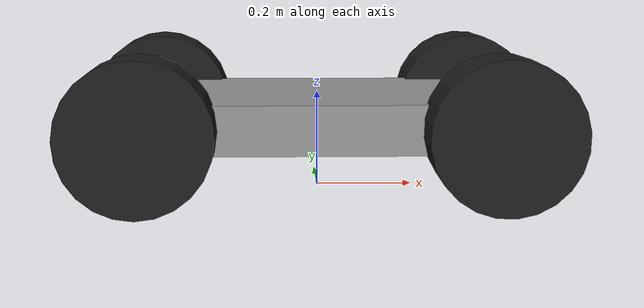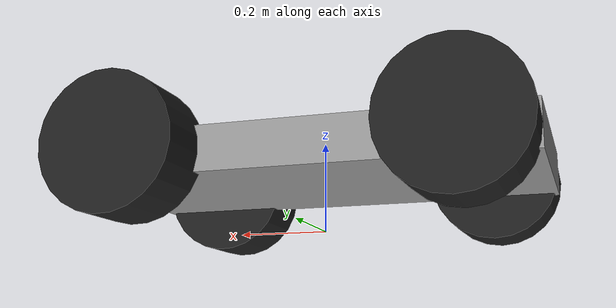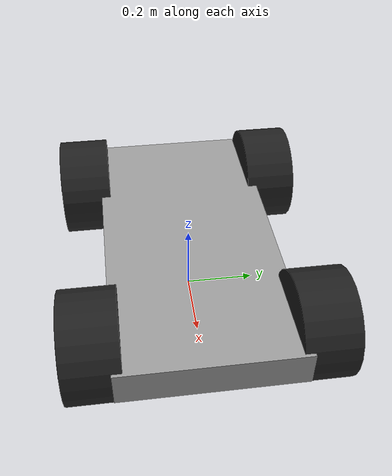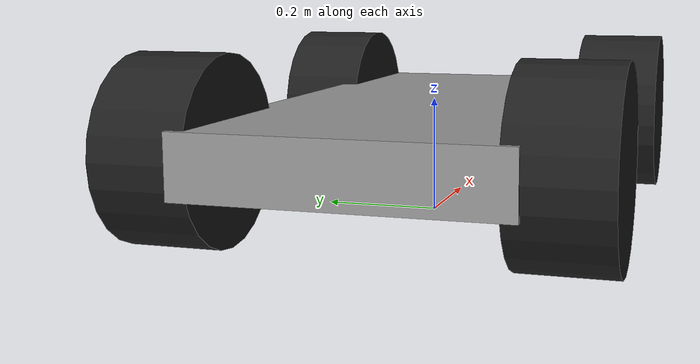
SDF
<?xml version="1.0" ?>

<sdf version="1.5">
  <model name="cart_front_steer">
    <link name="chassis">
      <pose>0 0 0.15 0 0 0</pose>
      <inertial>
        <pose>0.1 0 0 0 0 0</pose>
        <mass>10</mass>
        <inertia>
          <ixx>0.21666666666666667</ixx>
          <iyy>0.8416666666666667</iyy>
          <izz>1.0416666666666667</izz>
          <ixy>0</ixy>
          <ixz>0</ixz>
          <iyz>0</iyz>
        </inertia>
      </inertial>
      <collision name="collision">
        <geometry>
          <box>
            <size>1.0 0.5 0.1</size>
          </box>
        </geometry>
        <surface>
          <contact>
            <ode>
              <soft_cfm>0.0</soft_cfm>
              <soft_erp>0.2</soft_erp>
              <kp>1e+13</kp>
              <kd>1.0</kd>
              <max_vel>0.01</max_vel>
              <min_depth>0.001</min_depth>
            </ode>
          </contact>
        </surface>
      </collision>
      <visual name="visual">
        <geometry>
          <box>
            <size>1.0 0.5 0.1</size>
          </box>
        </geometry>
        <material>
          <script>
            <uri>file://media/materials/scripts/gazebo.material</uri>
            <name>Gazebo/Grey</name>
          </script>
        </material>
      </visual>

      <!-- Collision sensor -->
      <sensor name="contact_sensor_chassis" type="contact">
        <update_rate>50</update_rate>
        <contact>
          <collision>chassis::collision</collision>
        </contact>
        <plugin name="gazebo_ros_contact" filename="libgazebo_ros_contact.so">
          <robotNamespace>/my_robot</robotNamespace>
          <bumperTopicName>bumper_data</bumperTopicName>
        </plugin>
      </sensor>

      <plugin name="imu_plugin" filename="libgazebo_ros_imu.so">
        <robotNamespace>/my_robot</robotNamespace>
        <topicName>imu/data</topicName>
        <updateRate>50.0</updateRate>
        <bodyName>chassis</bodyName>
      </plugin>

      <plugin name="odom_plugin" filename="libgazebo_ros_p3d.so">
        <robotNamespace>/my_robot</robotNamespace>
        <frameName>odom</frameName>
        <bodyName>chassis</bodyName>
        <xyzOffsets>0 0 0</xyzOffsets>
        <rpyOffsets>0 0 0</rpyOffsets>
      </plugin>

      <plugin name="gazebo_ros_control" filename="libgazebo_ros_control.so">
        <robotNamespace>/my_robot</robotNamespace>
      </plugin>

      <!-- Adding LiDAR sensor -->
      <sensor name="velodyne" type="ray">
        <pose>0.5 0 0.9 0 0 0</pose>
        <visualize>false</visualize>
        <update_rate>30</update_rate>
        <ray>
          <scan>
            <horizontal>
              <samples>800</samples>
              <resolution>0.05</resolution>
              <min_angle>-3.141592653589793</min_angle>
              <max_angle>3.141592653589793</max_angle>
            </horizontal>
            <vertical>
              <samples>32</samples> <!-- VLP-16 有 16 个通道 -->
              <resolution>0.5</resolution>
              <min_angle>-0.2617993877991494</min_angle>
              <max_angle>0.2617993877991494</max_angle>
            </vertical>
          </scan>
          <range>
            <min>0.05</min>
            <max>30.0</max>
            <resolution>0.01</resolution>
          </range>
        </ray>
        <plugin name="gazebo_ros_velodyne_laser" filename="libgazebo_ros_velodyne_laser.so">
          <robotNamespace>/my_robot</robotNamespace>
          <topicName>/velodyne_points</topicName>
          <frameName>velodyne</frameName>
          <min_range>0.05</min_range> <!-- 明确设置最小范围 -->
          <max_range>30.0</max_range> <!-- 明确设置最大范围 -->
          <gaussianNoise>0.02</gaussianNoise> <!-- 添加噪声参数 -->
          <min_intensity>0.1</min_intensity>
          <organize_cloud>true</organize_cloud> <!-- 设置为有序输出 -->
        </plugin>
      </sensor>
    </link>

    <!-- Existing links and joints -->
    <link name="wheel_front_left">
      <pose>0.35 0.298 0.15 -1.5707963267948966 -0.08726646259971647 0</pose>
      <inertial>
        <mass>0.5</mass>
        <inertia>
          <ixx>0.0030791666666666667</ixx>
          <iyy>0.0030791666666666667</iyy>
          <izz>0.005625</izz>
          <ixy>0</ixy>
          <ixz>0</ixz>
          <iyz>0</iyz>
        </inertia>
      </inertial>
      <collision name="collision">
        <geometry>
          <cylinder>
            <radius>0.15</radius>
            <length>0.15</length>
          </cylinder>
        </geometry>
      </collision>
      <!-- Front Left Wheel Contact Sensor -->
      <sensor name="contact_sensor_fl" type="contact">
        <update_rate>50</update_rate>
        <always_on>true</always_on>
        <contact>
          <collision>wheel_front_left::collision</collision>
        </contact>
        <plugin name="gazebo_ros_contact" filename="libgazebo_ros_contact.so">
          <robotNamespace>/my_robot</robotNamespace>
          <bumperTopicName>front_left_bumper_data</bumperTopicName>
        </plugin>
      </sensor>
      <visual name="visual">
        <geometry>
          <cylinder>
            <radius>0.15</radius>
            <length>0.15</length>
          </cylinder>
        </geometry>
        <surface>
          <friction>
            <ode>
              <mu>500</mu> <!-- 主摩擦系数 -->
              <mu2>500</mu2> <!-- 次摩擦系数 -->
            </ode>
          </friction>
          <contact>
            <ode>
              <soft_cfm>0.0</soft_cfm>
              <soft_erp>0.2</soft_erp>
              <kp>1e+13</kp>
              <kd>1.0</kd>
              <max_vel>0.01</max_vel>
              <min_depth>0.001</min_depth>
            </ode>
          </contact>
        </surface>
        <material>
          <script>
            <uri>file://media/materials/scripts/gazebo.material</uri>
            <name>Gazebo/Black</name>
          </script>
        </material>
      </visual>
    </link>

    <joint name="wheel_front_left_steer_spin" type="universal">
      <parent>chassis</parent>
      <child>wheel_front_left</child>
      <axis>
        <xyz>0 -1 0</xyz>
        <limit>
          <lower>-0.6108652381980153</lower>
          <upper>0.6108652381980153</upper>
        </limit>
        <dynamics>
          <damping>0.3</damping> <!-- 增加阻尼 -->
        </dynamics>
      </axis>
      <axis2>
        <xyz>0 0 1</xyz>
      </axis2>
    </joint>

    <link name="wheel_front_right">
      <pose>0.35 -0.298 0.15 -1.5707963267948966 -0.08726646259971647 0</pose>
      <inertial>
        <mass>0.5</mass>
        <inertia>
          <ixx>0.0030791666666666667</ixx>
          <iyy>0.0030791666666666667</iyy>
          <izz>0.005625</izz>
          <ixy>0</ixy>
          <ixz>0</ixz>
          <iyz>0</iyz>
        </inertia>
      </inertial>
      <collision name="collision">
        <geometry>
          <cylinder>
            <radius>0.15</radius>
            <length>0.15</length>
          </cylinder>
        </geometry>
      </collision>
      <!-- Front Right Wheel Contact Sensor -->
      <sensor name="contact_sensor_fr" type="contact">
        <update_rate>50</update_rate>
        <always_on>true</always_on>
        <contact>
          <collision>wheel_front_right::collision</collision>
        </contact>
        <plugin name="gazebo_ros_contact" filename="libgazebo_ros_contact.so">
          <robotNamespace>/my_robot</robotNamespace>
          <bumperTopicName>front_right_bumper_data</bumperTopicName>
        </plugin>
      </sensor>
      <visual name="visual">
        <geometry>
          <cylinder>
            <radius>0.15</radius>
            <length>0.15</length>
          </cylinder>
        </geometry>
        <surface>
          <friction>
            <ode>
              <mu>500</mu> <!-- 主摩擦系数 -->
              <mu2>500</mu2> <!-- 次摩擦系数 -->
            </ode>
          </friction>
          <contact>
            <ode>
              <soft_cfm>0.0</soft_cfm>
              <soft_erp>0.2</soft_erp>
              <kp>1e+13</kp>
              <kd>1.0</kd>
              <max_vel>0.01</max_vel>
              <min_depth>0.001</min_depth>
            </ode>
          </contact>
        </surface>
        <material>
          <script>
            <uri>file://media/materials/scripts/gazebo.material</uri>
            <name>Gazebo/Black</name>
          </script>
        </material>
      </visual>
    </link>

    <joint name="wheel_front_right_steer_spin" type="universal">
      <parent>chassis</parent>
      <child>wheel_front_right</child>
      <axis>
        <xyz>0 -1 0</xyz>
        <limit>
          <lower>-0.6108652381980153</lower>
          <upper>0.6108652381980153</upper>
        </limit>
        <dynamics>
          <damping>0.1</damping> <!-- 增加阻尼 -->
        </dynamics>
      </axis>
      <axis2>
        <xyz>0 0 1</xyz>
      </axis2>
    </joint>

    <link name="wheel_rear_left">
      <pose>-0.35 0.298 0.15 -1.5707963267948966 0 0</pose>
      <inertial>
        <mass>0.5</mass>
        <inertia>
          <ixx>0.0030791666666666667</ixx>
          <iyy>0.0030791666666666667</iyy>
          <izz>0.005625</izz>
          <ixy>0</ixy>
          <ixz>0</ixz>
          <iyz>0</iyz>
        </inertia>
      </inertial>
      <collision name="collision">
        <geometry>
          <cylinder>
            <radius>0.15</radius>
            <length>0.15</length>
          </cylinder>
        </geometry>
      </collision>
      <!-- Rear Left Wheel Contact Sensor -->
      <sensor name="contact_sensor_rl" type="contact">
        <update_rate>50</update_rate>
        <contact>
          <collision>wheel_rear_left::collision</collision>
        </contact>
        <plugin name="gazebo_ros_contact" filename="libgazebo_ros_contact.so">
          <robotNamespace>/my_robot</robotNamespace>
          <bumperTopicName>rear_left_bumper_data</bumperTopicName>
        </plugin>
      </sensor>
      <visual name="visual">
        <geometry>
          <cylinder>
            <radius>0.15</radius>
            <length>0.15</length>
          </cylinder>
        </geometry>
        <surface>
          <friction>
            <ode>
              <mu>500</mu> <!-- 主摩擦系数 -->
              <mu2>500</mu2> <!-- 次摩擦系数 -->
            </ode>
          </friction>
          <contact>
            <ode>
              <soft_cfm>0.0</soft_cfm>
              <soft_erp>0.2</soft_erp>
              <kp>1e+13</kp>
              <kd>1.0</kd>
              <max_vel>0.01</max_vel>
              <min_depth>0.001</min_depth>
            </ode>
          </contact>
        </surface>
        <material>
          <script>
            <uri>file://media/materials/scripts/gazebo.material</uri>
            <name>Gazebo/Black</name>
          </script>
        </material>
      </visual>
    </link>
    <joint name="wheel_rear_left_spin" type="revolute">
      <parent>chassis</parent>
      <child>wheel_rear_left</child>
      <axis>
        <xyz>0 0 1</xyz>
        <dynamics>
          <damping>0.1</damping> <!-- 增加阻尼 -->
        </dynamics>
      </axis>
    </joint>

    <link name="wheel_rear_right">
      <pose>-0.35 -0.298 0.15 -1.5707963267948966 0 0</pose>
      <inertial>
        <mass>0.5</mass>
        <inertia>
          <ixx>0.0030791666666666667</ixx>
          <iyy>0.0030791666666666667</iyy>
          <izz>0.005625</izz>
          <ixy>0</ixy>
          <ixz>0</ixz>
          <iyz>0</iyz>
        </inertia>
      </inertial>
      <collision name="collision">
        <geometry>
          <cylinder>
            <radius>0.15</radius>
            <length>0.15</length>
          </cylinder>
        </geometry>
      </collision>
      <!-- Rear Right Wheel Contact Sensor -->
      <sensor name="contact_sensor_rr" type="contact">
        <update_rate>50</update_rate>
        <contact>
          <collision>wheel_rear_right::collision</collision>
        </contact>
        <plugin name="gazebo_ros_contact" filename="libgazebo_ros_contact.so">
          <robotNamespace>/my_robot</robotNamespace>
          <bumperTopicName>rear_right_bumper_data</bumperTopicName>
        </plugin>
      </sensor>
      <visual name="visual">
        <geometry>
          <cylinder>
            <radius>0.15</radius>
            <length>0.15</length>
          </cylinder>
        </geometry>
        <surface>
          <friction>
            <ode>
              <mu>500</mu> <!-- 主摩擦系数 -->
              <mu2>500</mu2> <!-- 次摩擦系数 -->
            </ode>
          </friction>
          <contact>
            <ode>
              <soft_cfm>0.0</soft_cfm>
              <soft_erp>0.2</soft_erp>
              <kp>1e+13</kp>
              <kd>1.0</kd>
              <max_vel>0.01</max_vel>
              <min_depth>0.001</min_depth>
            </ode>
          </contact>
        </surface>
        <material>
          <script>
            <uri>file://media/materials/scripts/gazebo.material</uri>
            <name>Gazebo/Black</name>
          </script>
        </material>
      </visual>
    </link>
    <joint name="wheel_rear_right_spin" type="revolute">
      <parent>chassis</parent>
      <child>wheel_rear_right</child>
      <axis>
        <xyz>0 0 1</xyz>
        <dynamics>
          <damping>0.1</damping> <!-- 增加阻尼 -->
        </dynamics>
      </axis>
    </joint>

    <!-- Adding Transmission and Actuators -->
    <transmission name="trans_wheel_front_left">
      <type>pr2_mechanism_model/SimpleTransmission</type>
      <actuator name="wheel_front_left_motor" />
      <joint name="wheel_front_left_steer_spin" />
    </transmission>

    <transmission name="trans_wheel_front_right">
      <type>pr2_mechanism_model/SimpleTransmission</type>
      <actuator name="wheel_front_right_motor" />
      <joint name="wheel_front_right_steer_spin" />
    </transmission>

    <transmission name="trans_wheel_rear_left">
      <type>pr2_mechanism_model/SimpleTransmission</type>
      <actuator name="wheel_rear_left_motor" />
      <joint name="wheel_rear_left_spin" />
    </transmission>

    <transmission name="trans_wheel_rear_right">
      <type>pr2_mechanism_model/SimpleTransmission</type>
      <actuator name="wheel_rear_right_motor" />
      <joint name="wheel_rear_right_spin" />
    </transmission>
  </model>
</sdf>
